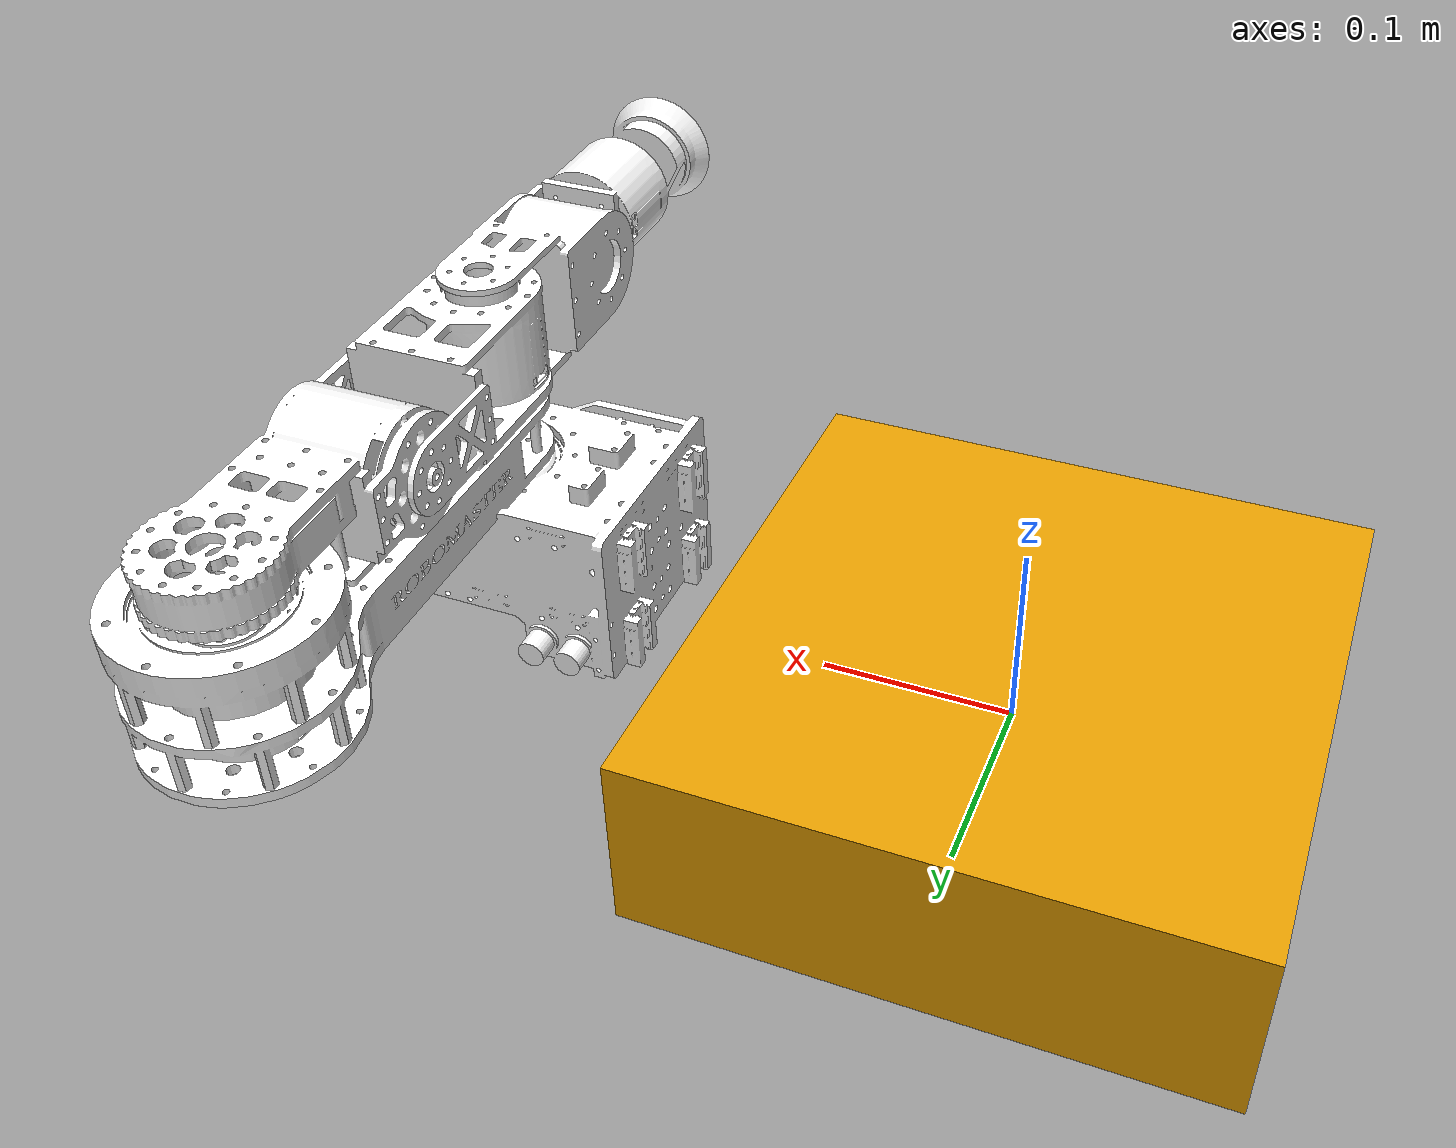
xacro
<?xml version="1.0"?>
<robot xmlns:xacro="http://www.ros.org/wiki/xacro" name="engineering">
    <xacro:arg name="initial_positions_file" default="initial_positions.yaml" />

    <!-- Import engineering urdf file -->
    <xacro:include filename="$(find robot_description)/urdf/engineering.urdf" />

    <!-- Import control_xacro -->
    <xacro:include filename="engineering.ros2_control.xacro" />

    <xacro:engineering_ros2_control name="FakeSystem" initial_positions_file="$(arg initial_positions_file)"/>

</robot>

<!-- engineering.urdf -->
<robot
  name="engineering">
  <link
    name="base_link">
    <inertial>
      <origin
        xyz="0.0316640513947066 0.000990025322590318 0.0242796553879492"
        rpy="0 0 0" />
      <mass
        value="14.5359240726821" />
      <inertia
        ixx="0.0635520558930804"
        ixy="7.56958753189748E-07"
        ixz="0.000121383536516142"
        iyy="0.0744966044646314"
        iyz="-1.74589365533716E-05"
        izz="0.0553730839054275" />
    </inertial>
    <visual>
      <origin xyz="0 0 0" rpy="0 0 0"/>
      <geometry>
        <box size="0.3 0.3 0.1"/>
      </geometry>
    </visual>
<collision>
  <origin xyz="0 0 0" rpy="0 0 0"/>
  <geometry>
    <box size="0.3 0.3 0.1"/>
  </geometry>
</collision>
  </link>
  <link
    name="link0">
    <inertial>
      <origin
        xyz="-0.0426656341883163 1.45674684067467E-05 -0.026925605733885"
        rpy="0 0 0" />
      <mass
        value="0.527978667414384" />
      <inertia
        ixx="0.000413860140140857"
        ixy="-7.85203399046786E-08"
        ixz="-3.25375695484286E-06"
        iyy="0.000456270445226169"
        iyz="9.41252418623816E-08"
        izz="0.000620417683976676" />
    </inertial>
    <visual>
      <origin
        xyz="0 0 0"
        rpy="0 0 0" />
      <geometry>
        <mesh
          filename="package://robot_description/meshes/link0.STL" />
      </geometry>
      <material
        name="">
        <color
          rgba="1 1 1 1" />
      </material>
    </visual>
    <collision> <origin xyz="0 0 0" rpy="0 0 0" /> <geometry> <mesh filename="package://robot_description/meshes/link0.STL" /> </geometry> </collision>
  </link>
  <joint
    name="base_to_arm_link"
    type="fixed">
    <origin
      xyz="0.272038583826751 0.00806856059115645 0.0892308450395353"
      rpy="0 0 0" />
    <parent
      link="base_link" />
    <child
      link="link0" />
    <axis
      xyz="0 0 0" />
  </joint>
  <link
    name="link1">
    <inertial>
      <origin
        xyz="5.40213698460579E-06 0.164026200648651 0.0271417802096991"
        rpy="0 0 0" />
      <mass
        value="0.628167715304593" />
      <inertia
        ixx="0.00193286660773188"
        ixy="7.8934709574372E-07"
        ixz="-2.2928205279204E-09"
        iyy="0.000275686301860535"
        iyz="9.04331021700409E-09"
        izz="0.00215427512180451" />
    </inertial>
    <visual>
      <origin
        xyz="0 0 0"
        rpy="0 0 0" />
      <geometry>
        <mesh
          filename="package://robot_description/meshes/link1.STL" />
      </geometry>
      <material
        name="">
        <color
          rgba="1 1 1 1" />
      </material>
    </visual>
    <collision> <origin xyz="0 0 0" rpy="0 0 0" /> <geometry> <mesh filename="package://robot_description/meshes/link1.STL" /> </geometry> </collision>

  </link>
  <joint
    name="joint0"
    type="revolute">
    <safety_controller k_position="100.0" k_velocity="40.0" soft_lower_limit="-2.8973" soft_upper_limit="2.8973" />

    <origin
      xyz="0 0 0.0110000000000097"
      rpy="0 0 0" />
    <parent
      link="link0" />
    <child
      link="link1" />
    <axis
      xyz="0 0 -1" />
    <limit
      lower="-3.14"
      upper="3.14"
      effort="87"
      velocity="2.3925" />
  </joint>
  <link
    name="link2">
    <inertial>
      <origin
        xyz="-2.10778858145688E-05 -0.0699804300380891 -0.00234469992386188"
        rpy="0 0 0" />
      <mass
        value="0.310860155101363" />
      <inertia
        ixx="0.000145070476575102"
        ixy="6.87644175048574E-09"
        ixz="-9.64074202734722E-09"
        iyy="9.9288991248962E-05"
        iyz="8.28164393041068E-08"
        izz="0.000162123902899647" />
    </inertial>
    <visual>
      <origin
        xyz="0 0 0"
        rpy="0 0 0" />
      <geometry>
        <mesh
          filename="package://robot_description/meshes/link2.STL" />
      </geometry>
      <material
        name="">
        <color
          rgba="1 1 1 1" />
      </material>
    </visual>
        <collision> <origin xyz="0 0 0" rpy="0 0 0" /> <geometry> <mesh filename="package://robot_description/meshes/link2.STL" /> </geometry> </collision>

  </link>
  <joint
    name="joint1"
    type="revolute">
        <safety_controller k_position="100.0" k_velocity="40.0" soft_lower_limit="-2.8973" soft_upper_limit="2.8973" />

    <origin
      xyz="0 0.21 0.0712499999999991"
      rpy="0 0 0" />
    <parent
      link="link1" />
    <child
      link="link2" />
    <axis
      xyz="0 0 1" />
    <limit
      lower="-3.14"
      upper="3.14"
      effort="87"
      velocity="2.3925" />
  </joint>
  <link
    name="link3">
    <inertial>
      <origin
        xyz="-0.0346835713961875 -0.0841474347506511 -0.000159405565736903"
        rpy="0 0 0" />
      <mass
        value="0.256072188633538" />
      <inertia
        ixx="0.000101103235544813"
        ixy="1.53888724697351E-08"
        ixz="-1.24861030076478E-08"
        iyy="8.52404596321857E-05"
        iyz="1.22966296402567E-07"
        izz="0.000133190301466116" />
    </inertial>
    <visual>
      <origin
        xyz="0 0 0"
        rpy="0 0 0" />
      <geometry>
        <mesh
          filename="package://robot_description/meshes/link3.STL" />
      </geometry>
      <material
        name="">
        <color
          rgba="1 1 1 1" />
      </material>
    </visual>
    <collision> <origin xyz="0 0 0" rpy="0 0 0" /> <geometry> <mesh filename="package://robot_description/meshes/link3.STL" /> </geometry> </collision>

  </link>
  <joint
    name="joint2"
    type="revolute">
            <safety_controller k_position="100.0" k_velocity="40.0" soft_lower_limit="-2.8973" soft_upper_limit="2.8973" />

    <origin
      xyz="0.0351249999999999 -0.101499999999985 -0.00699999999999912"
      rpy="0 0 0" />
    <parent
      link="link2" />
    <child
      link="link3" />
    <axis
      xyz="-1 0 0" />
    <limit
      lower="-3.14"
      upper="3.14"
      effort="87"
      velocity="2.3925" />
  </joint>
  <link
    name="link4">
    <inertial>
      <origin
        xyz="0.000491659665040473 -0.0607945845324988 -0.0326737146737972"
        rpy="0 0 0" />
      <mass
        value="0.201994868071281" />
      <inertia
        ixx="8.71444443053187E-05"
        ixy="-1.26557074286767E-08"
        ixz="1.15159856043111E-07"
        iyy="6.70727754608537E-05"
        iyz="-6.42467832117134E-09"
        izz="6.85319926253284E-05" />
    </inertial>
    <visual>
      <origin
        xyz="0 0 0"
        rpy="0 0 0" />
      <geometry>
        <mesh
          filename="package://robot_description/meshes/link4.STL" />
      </geometry>
      <material
        name="">
        <color
          rgba="1 1 1 1" />
      </material>
    </visual>
        <collision> <origin xyz="0 0 0" rpy="0 0 0" /> <geometry> <mesh filename="package://robot_description/meshes/link4.STL" /> </geometry> </collision>

  </link>
  <joint
    name="joint3"
    type="revolute">
            <safety_controller k_position="100.0" k_velocity="40.0" soft_lower_limit="-2.8973" soft_upper_limit="2.8973" />

    <origin
      xyz="-0.0350749980412956 -0.108500013081601 0.0355000000000008"
      rpy="0 0 0" />
    <parent
      link="link3" />
    <child
      link="link4" />
    <axis
      xyz="0 0 1" />
    <limit
      lower="-3.14"
      upper="3.14"
      effort="87"
      velocity="2.3925" />
  </joint>
  <link
    name="link5">
    <inertial>
      <origin
        xyz="-0.0218574167330175 -0.0803555286898056 1.28471852763878E-05"
        rpy="0 0 0" />
      <mass
        value="0.233923856835534" />
      <inertia
        ixx="5.63434311173349E-05"
        ixy="-8.63406542012592E-09"
        ixz="5.75607857862843E-07"
        iyy="6.92857546641657E-05"
        iyz="-1.26233081586473E-07"
        izz="5.40611460683093E-05" />
    </inertial>
    <visual>
      <origin
        xyz="0 0 0"
        rpy="0 0 0" />
      <geometry>
        <mesh
          filename="package://robot_description/meshes/link5.STL" />
      </geometry>
      <material
        name="">
        <color
          rgba="1 1 1 1" />
      </material>
    </visual>
        <collision> <origin xyz="0 0 0" rpy="0 0 0" /> <geometry> <mesh filename="package://robot_description/meshes/link5.STL" /> </geometry> </collision>

  </link>
  <joint
    name="joint4"
    type="revolute">
            <safety_controller k_position="100.0" k_velocity="40.0" soft_lower_limit="-2.8973" soft_upper_limit="2.8973" />

    <origin
      xyz="0.030500000000018 -0.0780000000000333 -0.0321999999999957"
      rpy="0 0 0" />
    <parent
      link="link4" />
    <child
      link="link5" />
    <axis
      xyz="-1 0 0" />
    <limit
      lower="-3.14"
      upper="3.14"
      effort="87"
      velocity="2.3925" />
  </joint>
</robot>
